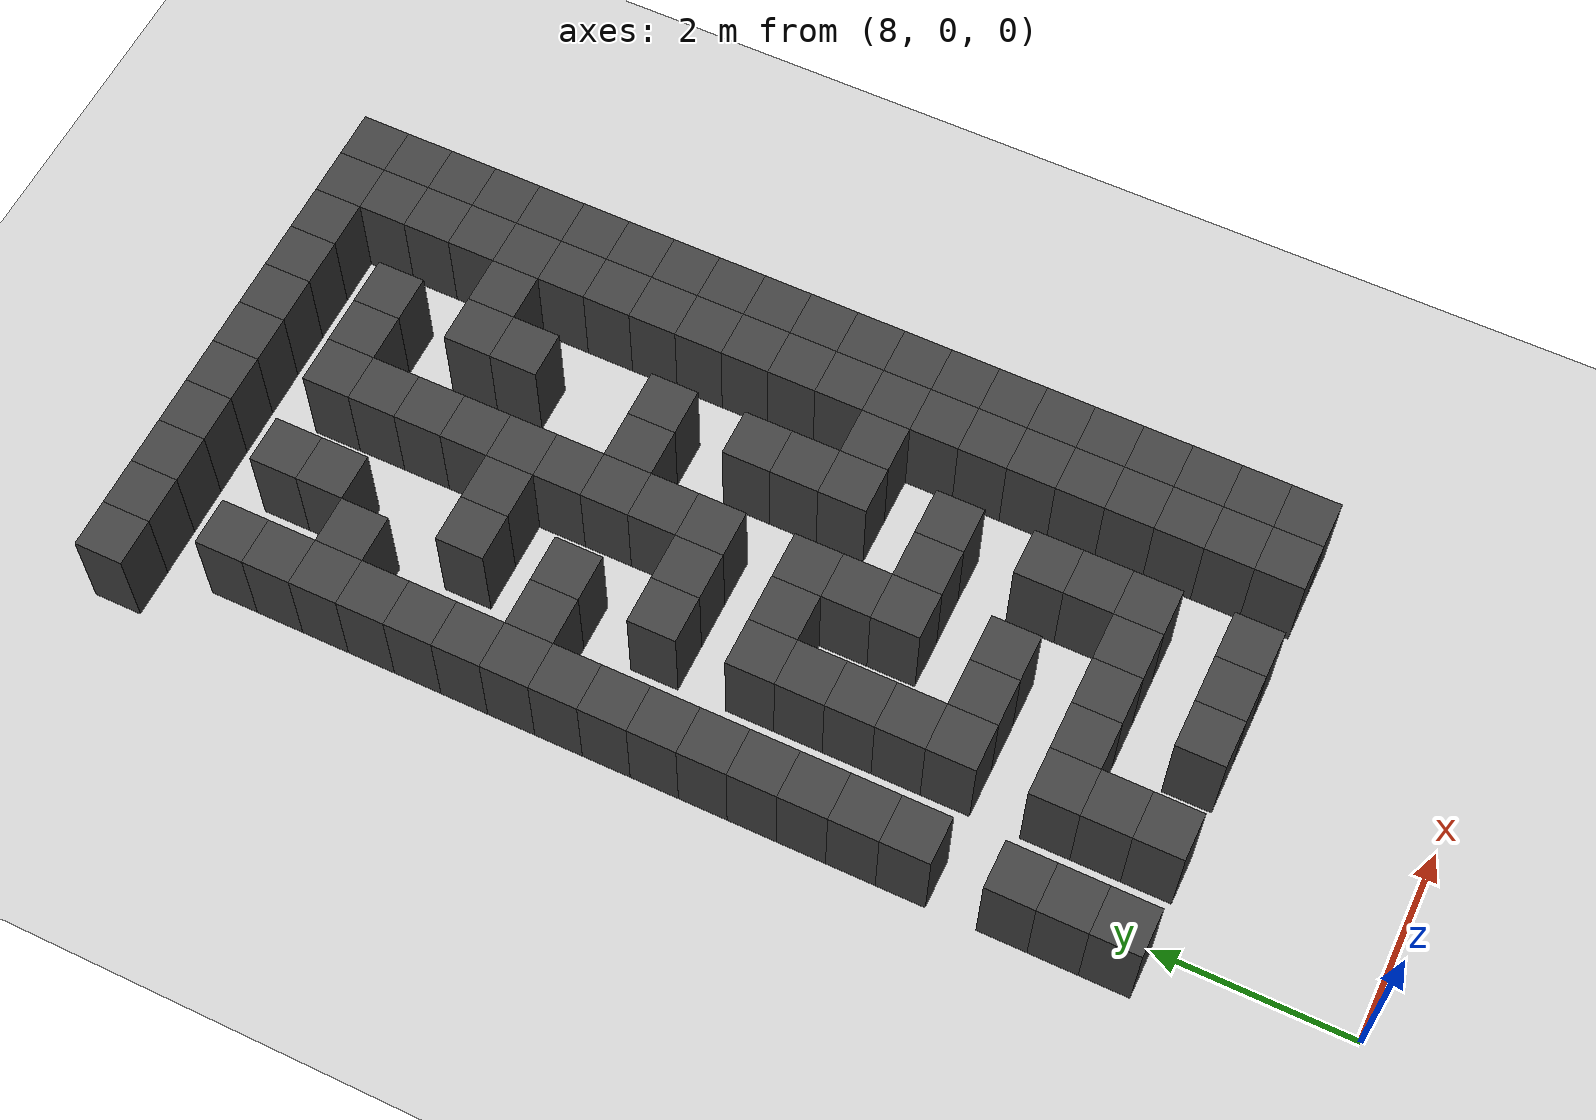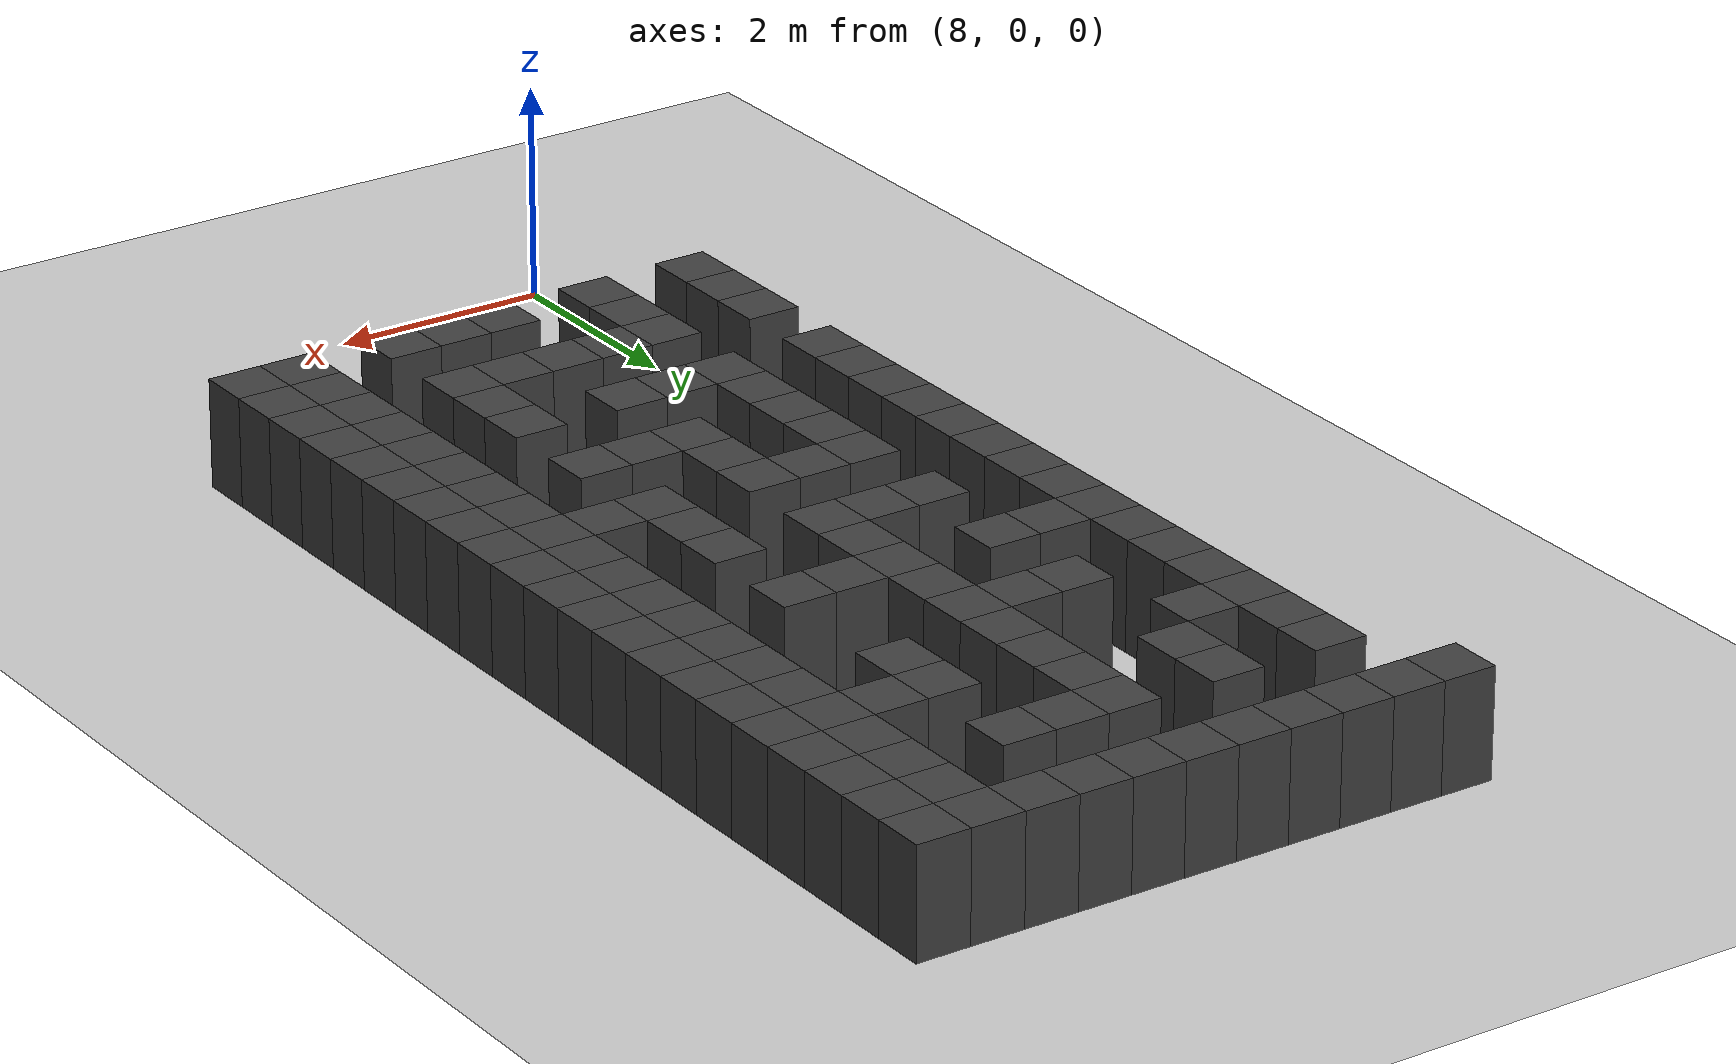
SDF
<sdf version="1.7">
 <world name="map_16048">
  <model name="ground_plane">
   <static>true</static>
   <link name="link">
    <collision name="collision">
     <geometry><plane><normal>0 0 1</normal><size>200 200</size></plane></geometry>
    </collision>
    <visual name="visual">
     <geometry><plane><normal>0 0 1</normal><size>200 200</size></plane></geometry>
     <material><ambient>0.8 0.8 0.8 1</ambient><diffuse>0.8 0.8 0.8 1</diffuse></material>
    </visual>
   </link>
  </model>
  <model name="maze_environment">
   <static>true</static>
   <link name="wall_39">
    <pose>7.250 12.250 0.500 0 0 0</pose>
    <collision name="col"><geometry><box><size>0.5 0.5 1.0</size></box></geometry></collision>
    <visual name="vis">
     <geometry><box><size>0.5 0.5 1.0</size></box></geometry>
     <material><ambient>0.15 0.15 0.15 1</ambient><diffuse>0.25 0.25 0.25 1</diffuse></material>
    </visual>
   </link>
   <link name="wall_40">
    <pose>7.750 12.250 0.500 0 0 0</pose>
    <collision name="col"><geometry><box><size>0.5 0.5 1.0</size></box></geometry></collision>
    <visual name="vis">
     <geometry><box><size>0.5 0.5 1.0</size></box></geometry>
     <material><ambient>0.15 0.15 0.15 1</ambient><diffuse>0.25 0.25 0.25 1</diffuse></material>
    </visual>
   </link>
   <link name="wall_41">
    <pose>8.250 12.250 0.500 0 0 0</pose>
    <collision name="col"><geometry><box><size>0.5 0.5 1.0</size></box></geometry></collision>
    <visual name="vis">
     <geometry><box><size>0.5 0.5 1.0</size></box></geometry>
     <material><ambient>0.15 0.15 0.15 1</ambient><diffuse>0.25 0.25 0.25 1</diffuse></material>
    </visual>
   </link>
   <link name="wall_42">
    <pose>8.750 12.250 0.500 0 0 0</pose>
    <collision name="col"><geometry><box><size>0.5 0.5 1.0</size></box></geometry></collision>
    <visual name="vis">
     <geometry><box><size>0.5 0.5 1.0</size></box></geometry>
     <material><ambient>0.15 0.15 0.15 1</ambient><diffuse>0.25 0.25 0.25 1</diffuse></material>
    </visual>
   </link>
   <link name="wall_43">
    <pose>9.250 12.250 0.500 0 0 0</pose>
    <collision name="col"><geometry><box><size>0.5 0.5 1.0</size></box></geometry></collision>
    <visual name="vis">
     <geometry><box><size>0.5 0.5 1.0</size></box></geometry>
     <material><ambient>0.15 0.15 0.15 1</ambient><diffuse>0.25 0.25 0.25 1</diffuse></material>
    </visual>
   </link>
   <link name="wall_44">
    <pose>9.750 12.250 0.500 0 0 0</pose>
    <collision name="col"><geometry><box><size>0.5 0.5 1.0</size></box></geometry></collision>
    <visual name="vis">
     <geometry><box><size>0.5 0.5 1.0</size></box></geometry>
     <material><ambient>0.15 0.15 0.15 1</ambient><diffuse>0.25 0.25 0.25 1</diffuse></material>
    </visual>
   </link>
   <link name="wall_45">
    <pose>10.250 12.250 0.500 0 0 0</pose>
    <collision name="col"><geometry><box><size>0.5 0.5 1.0</size></box></geometry></collision>
    <visual name="vis">
     <geometry><box><size>0.5 0.5 1.0</size></box></geometry>
     <material><ambient>0.15 0.15 0.15 1</ambient><diffuse>0.25 0.25 0.25 1</diffuse></material>
    </visual>
   </link>
   <link name="wall_46">
    <pose>10.750 12.250 0.500 0 0 0</pose>
    <collision name="col"><geometry><box><size>0.5 0.5 1.0</size></box></geometry></collision>
    <visual name="vis">
     <geometry><box><size>0.5 0.5 1.0</size></box></geometry>
     <material><ambient>0.15 0.15 0.15 1</ambient><diffuse>0.25 0.25 0.25 1</diffuse></material>
    </visual>
   </link>
   <link name="wall_47">
    <pose>11.250 12.250 0.500 0 0 0</pose>
    <collision name="col"><geometry><box><size>0.5 0.5 1.0</size></box></geometry></collision>
    <visual name="vis">
     <geometry><box><size>0.5 0.5 1.0</size></box></geometry>
     <material><ambient>0.15 0.15 0.15 1</ambient><diffuse>0.25 0.25 0.25 1</diffuse></material>
    </visual>
   </link>
   <link name="wall_48">
    <pose>11.750 12.250 0.500 0 0 0</pose>
    <collision name="col"><geometry><box><size>0.5 0.5 1.0</size></box></geometry></collision>
    <visual name="vis">
     <geometry><box><size>0.5 0.5 1.0</size></box></geometry>
     <material><ambient>0.15 0.15 0.15 1</ambient><diffuse>0.25 0.25 0.25 1</diffuse></material>
    </visual>
   </link>
   <link name="wall_49">
    <pose>12.250 12.250 0.500 0 0 0</pose>
    <collision name="col"><geometry><box><size>0.5 0.5 1.0</size></box></geometry></collision>
    <visual name="vis">
     <geometry><box><size>0.5 0.5 1.0</size></box></geometry>
     <material><ambient>0.15 0.15 0.15 1</ambient><diffuse>0.25 0.25 0.25 1</diffuse></material>
    </visual>
   </link>
   <link name="wall_55">
    <pose>11.750 11.750 0.500 0 0 0</pose>
    <collision name="col"><geometry><box><size>0.5 0.5 1.0</size></box></geometry></collision>
    <visual name="vis">
     <geometry><box><size>0.5 0.5 1.0</size></box></geometry>
     <material><ambient>0.15 0.15 0.15 1</ambient><diffuse>0.25 0.25 0.25 1</diffuse></material>
    </visual>
   </link>
   <link name="wall_56">
    <pose>12.250 11.750 0.500 0 0 0</pose>
    <collision name="col"><geometry><box><size>0.5 0.5 1.0</size></box></geometry></collision>
    <visual name="vis">
     <geometry><box><size>0.5 0.5 1.0</size></box></geometry>
     <material><ambient>0.15 0.15 0.15 1</ambient><diffuse>0.25 0.25 0.25 1</diffuse></material>
    </visual>
   </link>
   <link name="wall_86">
    <pose>7.750 11.250 0.500 0 0 0</pose>
    <collision name="col"><geometry><box><size>0.5 0.5 1.0</size></box></geometry></collision>
    <visual name="vis">
     <geometry><box><size>0.5 0.5 1.0</size></box></geometry>
     <material><ambient>0.15 0.15 0.15 1</ambient><diffuse>0.25 0.25 0.25 1</diffuse></material>
    </visual>
   </link>
   <link name="wall_87">
    <pose>8.750 11.250 0.500 0 0 0</pose>
    <collision name="col"><geometry><box><size>0.5 0.5 1.0</size></box></geometry></collision>
    <visual name="vis">
     <geometry><box><size>0.5 0.5 1.0</size></box></geometry>
     <material><ambient>0.15 0.15 0.15 1</ambient><diffuse>0.25 0.25 0.25 1</diffuse></material>
    </visual>
   </link>
   <link name="wall_88">
    <pose>9.750 11.250 0.500 0 0 0</pose>
    <collision name="col"><geometry><box><size>0.5 0.5 1.0</size></box></geometry></collision>
    <visual name="vis">
     <geometry><box><size>0.5 0.5 1.0</size></box></geometry>
     <material><ambient>0.15 0.15 0.15 1</ambient><diffuse>0.25 0.25 0.25 1</diffuse></material>
    </visual>
   </link>
   <link name="wall_89">
    <pose>10.250 11.250 0.500 0 0 0</pose>
    <collision name="col"><geometry><box><size>0.5 0.5 1.0</size></box></geometry></collision>
    <visual name="vis">
     <geometry><box><size>0.5 0.5 1.0</size></box></geometry>
     <material><ambient>0.15 0.15 0.15 1</ambient><diffuse>0.25 0.25 0.25 1</diffuse></material>
    </visual>
   </link>
   <link name="wall_90">
    <pose>10.750 11.250 0.500 0 0 0</pose>
    <collision name="col"><geometry><box><size>0.5 0.5 1.0</size></box></geometry></collision>
    <visual name="vis">
     <geometry><box><size>0.5 0.5 1.0</size></box></geometry>
     <material><ambient>0.15 0.15 0.15 1</ambient><diffuse>0.25 0.25 0.25 1</diffuse></material>
    </visual>
   </link>
   <link name="wall_91">
    <pose>11.750 11.250 0.500 0 0 0</pose>
    <collision name="col"><geometry><box><size>0.5 0.5 1.0</size></box></geometry></collision>
    <visual name="vis">
     <geometry><box><size>0.5 0.5 1.0</size></box></geometry>
     <material><ambient>0.15 0.15 0.15 1</ambient><diffuse>0.25 0.25 0.25 1</diffuse></material>
    </visual>
   </link>
   <link name="wall_92">
    <pose>12.250 11.250 0.500 0 0 0</pose>
    <collision name="col"><geometry><box><size>0.5 0.5 1.0</size></box></geometry></collision>
    <visual name="vis">
     <geometry><box><size>0.5 0.5 1.0</size></box></geometry>
     <material><ambient>0.15 0.15 0.15 1</ambient><diffuse>0.25 0.25 0.25 1</diffuse></material>
    </visual>
   </link>
   <link name="wall_100">
    <pose>7.750 10.750 0.500 0 0 0</pose>
    <collision name="col"><geometry><box><size>0.5 0.5 1.0</size></box></geometry></collision>
    <visual name="vis">
     <geometry><box><size>0.5 0.5 1.0</size></box></geometry>
     <material><ambient>0.15 0.15 0.15 1</ambient><diffuse>0.25 0.25 0.25 1</diffuse></material>
    </visual>
   </link>
   <link name="wall_101">
    <pose>8.750 10.750 0.500 0 0 0</pose>
    <collision name="col"><geometry><box><size>0.5 0.5 1.0</size></box></geometry></collision>
    <visual name="vis">
     <geometry><box><size>0.5 0.5 1.0</size></box></geometry>
     <material><ambient>0.15 0.15 0.15 1</ambient><diffuse>0.25 0.25 0.25 1</diffuse></material>
    </visual>
   </link>
   <link name="wall_102">
    <pose>9.750 10.750 0.500 0 0 0</pose>
    <collision name="col"><geometry><box><size>0.5 0.5 1.0</size></box></geometry></collision>
    <visual name="vis">
     <geometry><box><size>0.5 0.5 1.0</size></box></geometry>
     <material><ambient>0.15 0.15 0.15 1</ambient><diffuse>0.25 0.25 0.25 1</diffuse></material>
    </visual>
   </link>
   <link name="wall_103">
    <pose>11.750 10.750 0.500 0 0 0</pose>
    <collision name="col"><geometry><box><size>0.5 0.5 1.0</size></box></geometry></collision>
    <visual name="vis">
     <geometry><box><size>0.5 0.5 1.0</size></box></geometry>
     <material><ambient>0.15 0.15 0.15 1</ambient><diffuse>0.25 0.25 0.25 1</diffuse></material>
    </visual>
   </link>
   <link name="wall_104">
    <pose>12.250 10.750 0.500 0 0 0</pose>
    <collision name="col"><geometry><box><size>0.5 0.5 1.0</size></box></geometry></collision>
    <visual name="vis">
     <geometry><box><size>0.5 0.5 1.0</size></box></geometry>
     <material><ambient>0.15 0.15 0.15 1</ambient><diffuse>0.25 0.25 0.25 1</diffuse></material>
    </visual>
   </link>
   <link name="wall_130">
    <pose>7.750 10.250 0.500 0 0 0</pose>
    <collision name="col"><geometry><box><size>0.5 0.5 1.0</size></box></geometry></collision>
    <visual name="vis">
     <geometry><box><size>0.5 0.5 1.0</size></box></geometry>
     <material><ambient>0.15 0.15 0.15 1</ambient><diffuse>0.25 0.25 0.25 1</diffuse></material>
    </visual>
   </link>
   <link name="wall_131">
    <pose>8.250 10.250 0.500 0 0 0</pose>
    <collision name="col"><geometry><box><size>0.5 0.5 1.0</size></box></geometry></collision>
    <visual name="vis">
     <geometry><box><size>0.5 0.5 1.0</size></box></geometry>
     <material><ambient>0.15 0.15 0.15 1</ambient><diffuse>0.25 0.25 0.25 1</diffuse></material>
    </visual>
   </link>
   <link name="wall_132">
    <pose>9.750 10.250 0.500 0 0 0</pose>
    <collision name="col"><geometry><box><size>0.5 0.5 1.0</size></box></geometry></collision>
    <visual name="vis">
     <geometry><box><size>0.5 0.5 1.0</size></box></geometry>
     <material><ambient>0.15 0.15 0.15 1</ambient><diffuse>0.25 0.25 0.25 1</diffuse></material>
    </visual>
   </link>
   <link name="wall_133">
    <pose>10.750 10.250 0.500 0 0 0</pose>
    <collision name="col"><geometry><box><size>0.5 0.5 1.0</size></box></geometry></collision>
    <visual name="vis">
     <geometry><box><size>0.5 0.5 1.0</size></box></geometry>
     <material><ambient>0.15 0.15 0.15 1</ambient><diffuse>0.25 0.25 0.25 1</diffuse></material>
    </visual>
   </link>
   <link name="wall_134">
    <pose>11.250 10.250 0.500 0 0 0</pose>
    <collision name="col"><geometry><box><size>0.5 0.5 1.0</size></box></geometry></collision>
    <visual name="vis">
     <geometry><box><size>0.5 0.5 1.0</size></box></geometry>
     <material><ambient>0.15 0.15 0.15 1</ambient><diffuse>0.25 0.25 0.25 1</diffuse></material>
    </visual>
   </link>
   <link name="wall_135">
    <pose>11.750 10.250 0.500 0 0 0</pose>
    <collision name="col"><geometry><box><size>0.5 0.5 1.0</size></box></geometry></collision>
    <visual name="vis">
     <geometry><box><size>0.5 0.5 1.0</size></box></geometry>
     <material><ambient>0.15 0.15 0.15 1</ambient><diffuse>0.25 0.25 0.25 1</diffuse></material>
    </visual>
   </link>
   <link name="wall_136">
    <pose>12.250 10.250 0.500 0 0 0</pose>
    <collision name="col"><geometry><box><size>0.5 0.5 1.0</size></box></geometry></collision>
    <visual name="vis">
     <geometry><box><size>0.5 0.5 1.0</size></box></geometry>
     <material><ambient>0.15 0.15 0.15 1</ambient><diffuse>0.25 0.25 0.25 1</diffuse></material>
    </visual>
   </link>
   <link name="wall_145">
    <pose>7.750 9.750 0.500 0 0 0</pose>
    <collision name="col"><geometry><box><size>0.5 0.5 1.0</size></box></geometry></collision>
    <visual name="vis">
     <geometry><box><size>0.5 0.5 1.0</size></box></geometry>
     <material><ambient>0.15 0.15 0.15 1</ambient><diffuse>0.25 0.25 0.25 1</diffuse></material>
    </visual>
   </link>
   <link name="wall_146">
    <pose>9.750 9.750 0.500 0 0 0</pose>
    <collision name="col"><geometry><box><size>0.5 0.5 1.0</size></box></geometry></collision>
    <visual name="vis">
     <geometry><box><size>0.5 0.5 1.0</size></box></geometry>
     <material><ambient>0.15 0.15 0.15 1</ambient><diffuse>0.25 0.25 0.25 1</diffuse></material>
    </visual>
   </link>
   <link name="wall_147">
    <pose>10.750 9.750 0.500 0 0 0</pose>
    <collision name="col"><geometry><box><size>0.5 0.5 1.0</size></box></geometry></collision>
    <visual name="vis">
     <geometry><box><size>0.5 0.5 1.0</size></box></geometry>
     <material><ambient>0.15 0.15 0.15 1</ambient><diffuse>0.25 0.25 0.25 1</diffuse></material>
    </visual>
   </link>
   <link name="wall_148">
    <pose>11.750 9.750 0.500 0 0 0</pose>
    <collision name="col"><geometry><box><size>0.5 0.5 1.0</size></box></geometry></collision>
    <visual name="vis">
     <geometry><box><size>0.5 0.5 1.0</size></box></geometry>
     <material><ambient>0.15 0.15 0.15 1</ambient><diffuse>0.25 0.25 0.25 1</diffuse></material>
    </visual>
   </link>
   <link name="wall_149">
    <pose>12.250 9.750 0.500 0 0 0</pose>
    <collision name="col"><geometry><box><size>0.5 0.5 1.0</size></box></geometry></collision>
    <visual name="vis">
     <geometry><box><size>0.5 0.5 1.0</size></box></geometry>
     <material><ambient>0.15 0.15 0.15 1</ambient><diffuse>0.25 0.25 0.25 1</diffuse></material>
    </visual>
   </link>
   <link name="wall_183">
    <pose>7.750 9.250 0.500 0 0 0</pose>
    <collision name="col"><geometry><box><size>0.5 0.5 1.0</size></box></geometry></collision>
    <visual name="vis">
     <geometry><box><size>0.5 0.5 1.0</size></box></geometry>
     <material><ambient>0.15 0.15 0.15 1</ambient><diffuse>0.25 0.25 0.25 1</diffuse></material>
    </visual>
   </link>
   <link name="wall_184">
    <pose>8.750 9.250 0.500 0 0 0</pose>
    <collision name="col"><geometry><box><size>0.5 0.5 1.0</size></box></geometry></collision>
    <visual name="vis">
     <geometry><box><size>0.5 0.5 1.0</size></box></geometry>
     <material><ambient>0.15 0.15 0.15 1</ambient><diffuse>0.25 0.25 0.25 1</diffuse></material>
    </visual>
   </link>
   <link name="wall_185">
    <pose>9.250 9.250 0.500 0 0 0</pose>
    <collision name="col"><geometry><box><size>0.5 0.5 1.0</size></box></geometry></collision>
    <visual name="vis">
     <geometry><box><size>0.5 0.5 1.0</size></box></geometry>
     <material><ambient>0.15 0.15 0.15 1</ambient><diffuse>0.25 0.25 0.25 1</diffuse></material>
    </visual>
   </link>
   <link name="wall_186">
    <pose>9.750 9.250 0.500 0 0 0</pose>
    <collision name="col"><geometry><box><size>0.5 0.5 1.0</size></box></geometry></collision>
    <visual name="vis">
     <geometry><box><size>0.5 0.5 1.0</size></box></geometry>
     <material><ambient>0.15 0.15 0.15 1</ambient><diffuse>0.25 0.25 0.25 1</diffuse></material>
    </visual>
   </link>
   <link name="wall_187">
    <pose>11.750 9.250 0.500 0 0 0</pose>
    <collision name="col"><geometry><box><size>0.5 0.5 1.0</size></box></geometry></collision>
    <visual name="vis">
     <geometry><box><size>0.5 0.5 1.0</size></box></geometry>
     <material><ambient>0.15 0.15 0.15 1</ambient><diffuse>0.25 0.25 0.25 1</diffuse></material>
    </visual>
   </link>
   <link name="wall_188">
    <pose>12.250 9.250 0.500 0 0 0</pose>
    <collision name="col"><geometry><box><size>0.5 0.5 1.0</size></box></geometry></collision>
    <visual name="vis">
     <geometry><box><size>0.5 0.5 1.0</size></box></geometry>
     <material><ambient>0.15 0.15 0.15 1</ambient><diffuse>0.25 0.25 0.25 1</diffuse></material>
    </visual>
   </link>
   <link name="wall_196">
    <pose>7.750 8.750 0.500 0 0 0</pose>
    <collision name="col"><geometry><box><size>0.5 0.5 1.0</size></box></geometry></collision>
    <visual name="vis">
     <geometry><box><size>0.5 0.5 1.0</size></box></geometry>
     <material><ambient>0.15 0.15 0.15 1</ambient><diffuse>0.25 0.25 0.25 1</diffuse></material>
    </visual>
   </link>
   <link name="wall_197">
    <pose>9.750 8.750 0.500 0 0 0</pose>
    <collision name="col"><geometry><box><size>0.5 0.5 1.0</size></box></geometry></collision>
    <visual name="vis">
     <geometry><box><size>0.5 0.5 1.0</size></box></geometry>
     <material><ambient>0.15 0.15 0.15 1</ambient><diffuse>0.25 0.25 0.25 1</diffuse></material>
    </visual>
   </link>
   <link name="wall_198">
    <pose>11.750 8.750 0.500 0 0 0</pose>
    <collision name="col"><geometry><box><size>0.5 0.5 1.0</size></box></geometry></collision>
    <visual name="vis">
     <geometry><box><size>0.5 0.5 1.0</size></box></geometry>
     <material><ambient>0.15 0.15 0.15 1</ambient><diffuse>0.25 0.25 0.25 1</diffuse></material>
    </visual>
   </link>
   <link name="wall_199">
    <pose>12.250 8.750 0.500 0 0 0</pose>
    <collision name="col"><geometry><box><size>0.5 0.5 1.0</size></box></geometry></collision>
    <visual name="vis">
     <geometry><box><size>0.5 0.5 1.0</size></box></geometry>
     <material><ambient>0.15 0.15 0.15 1</ambient><diffuse>0.25 0.25 0.25 1</diffuse></material>
    </visual>
   </link>
   <link name="wall_224">
    <pose>7.750 8.250 0.500 0 0 0</pose>
    <collision name="col"><geometry><box><size>0.5 0.5 1.0</size></box></geometry></collision>
    <visual name="vis">
     <geometry><box><size>0.5 0.5 1.0</size></box></geometry>
     <material><ambient>0.15 0.15 0.15 1</ambient><diffuse>0.25 0.25 0.25 1</diffuse></material>
    </visual>
   </link>
   <link name="wall_225">
    <pose>8.250 8.250 0.500 0 0 0</pose>
    <collision name="col"><geometry><box><size>0.5 0.5 1.0</size></box></geometry></collision>
    <visual name="vis">
     <geometry><box><size>0.5 0.5 1.0</size></box></geometry>
     <material><ambient>0.15 0.15 0.15 1</ambient><diffuse>0.25 0.25 0.25 1</diffuse></material>
    </visual>
   </link>
   <link name="wall_226">
    <pose>8.750 8.250 0.500 0 0 0</pose>
    <collision name="col"><geometry><box><size>0.5 0.5 1.0</size></box></geometry></collision>
    <visual name="vis">
     <geometry><box><size>0.5 0.5 1.0</size></box></geometry>
     <material><ambient>0.15 0.15 0.15 1</ambient><diffuse>0.25 0.25 0.25 1</diffuse></material>
    </visual>
   </link>
   <link name="wall_227">
    <pose>9.750 8.250 0.500 0 0 0</pose>
    <collision name="col"><geometry><box><size>0.5 0.5 1.0</size></box></geometry></collision>
    <visual name="vis">
     <geometry><box><size>0.5 0.5 1.0</size></box></geometry>
     <material><ambient>0.15 0.15 0.15 1</ambient><diffuse>0.25 0.25 0.25 1</diffuse></material>
    </visual>
   </link>
   <link name="wall_228">
    <pose>10.250 8.250 0.500 0 0 0</pose>
    <collision name="col"><geometry><box><size>0.5 0.5 1.0</size></box></geometry></collision>
    <visual name="vis">
     <geometry><box><size>0.5 0.5 1.0</size></box></geometry>
     <material><ambient>0.15 0.15 0.15 1</ambient><diffuse>0.25 0.25 0.25 1</diffuse></material>
    </visual>
   </link>
   <link name="wall_229">
    <pose>10.750 8.250 0.500 0 0 0</pose>
    <collision name="col"><geometry><box><size>0.5 0.5 1.0</size></box></geometry></collision>
    <visual name="vis">
     <geometry><box><size>0.5 0.5 1.0</size></box></geometry>
     <material><ambient>0.15 0.15 0.15 1</ambient><diffuse>0.25 0.25 0.25 1</diffuse></material>
    </visual>
   </link>
   <link name="wall_230">
    <pose>11.750 8.250 0.500 0 0 0</pose>
    <collision name="col"><geometry><box><size>0.5 0.5 1.0</size></box></geometry></collision>
    <visual name="vis">
     <geometry><box><size>0.5 0.5 1.0</size></box></geometry>
     <material><ambient>0.15 0.15 0.15 1</ambient><diffuse>0.25 0.25 0.25 1</diffuse></material>
    </visual>
   </link>
   <link name="wall_231">
    <pose>12.250 8.250 0.500 0 0 0</pose>
    <collision name="col"><geometry><box><size>0.5 0.5 1.0</size></box></geometry></collision>
    <visual name="vis">
     <geometry><box><size>0.5 0.5 1.0</size></box></geometry>
     <material><ambient>0.15 0.15 0.15 1</ambient><diffuse>0.25 0.25 0.25 1</diffuse></material>
    </visual>
   </link>
   <link name="wall_244">
    <pose>7.750 7.750 0.500 0 0 0</pose>
    <collision name="col"><geometry><box><size>0.5 0.5 1.0</size></box></geometry></collision>
    <visual name="vis">
     <geometry><box><size>0.5 0.5 1.0</size></box></geometry>
     <material><ambient>0.15 0.15 0.15 1</ambient><diffuse>0.25 0.25 0.25 1</diffuse></material>
    </visual>
   </link>
   <link name="wall_245">
    <pose>9.750 7.750 0.500 0 0 0</pose>
    <collision name="col"><geometry><box><size>0.5 0.5 1.0</size></box></geometry></collision>
    <visual name="vis">
     <geometry><box><size>0.5 0.5 1.0</size></box></geometry>
     <material><ambient>0.15 0.15 0.15 1</ambient><diffuse>0.25 0.25 0.25 1</diffuse></material>
    </visual>
   </link>
   <link name="wall_246">
    <pose>11.750 7.750 0.500 0 0 0</pose>
    <collision name="col"><geometry><box><size>0.5 0.5 1.0</size></box></geometry></collision>
    <visual name="vis">
     <geometry><box><size>0.5 0.5 1.0</size></box></geometry>
     <material><ambient>0.15 0.15 0.15 1</ambient><diffuse>0.25 0.25 0.25 1</diffuse></material>
    </visual>
   </link>
   <link name="wall_247">
    <pose>12.250 7.750 0.500 0 0 0</pose>
    <collision name="col"><geometry><box><size>0.5 0.5 1.0</size></box></geometry></collision>
    <visual name="vis">
     <geometry><box><size>0.5 0.5 1.0</size></box></geometry>
     <material><ambient>0.15 0.15 0.15 1</ambient><diffuse>0.25 0.25 0.25 1</diffuse></material>
    </visual>
   </link>
   <link name="wall_275">
    <pose>7.750 7.250 0.500 0 0 0</pose>
    <collision name="col"><geometry><box><size>0.5 0.5 1.0</size></box></geometry></collision>
    <visual name="vis">
     <geometry><box><size>0.5 0.5 1.0</size></box></geometry>
     <material><ambient>0.15 0.15 0.15 1</ambient><diffuse>0.25 0.25 0.25 1</diffuse></material>
    </visual>
   </link>
   <link name="wall_276">
    <pose>8.750 7.250 0.500 0 0 0</pose>
    <collision name="col"><geometry><box><size>0.5 0.5 1.0</size></box></geometry></collision>
    <visual name="vis">
     <geometry><box><size>0.5 0.5 1.0</size></box></geometry>
     <material><ambient>0.15 0.15 0.15 1</ambient><diffuse>0.25 0.25 0.25 1</diffuse></material>
    </visual>
   </link>
   <link name="wall_277">
    <pose>9.250 7.250 0.500 0 0 0</pose>
    <collision name="col"><geometry><box><size>0.5 0.5 1.0</size></box></geometry></collision>
    <visual name="vis">
     <geometry><box><size>0.5 0.5 1.0</size></box></geometry>
     <material><ambient>0.15 0.15 0.15 1</ambient><diffuse>0.25 0.25 0.25 1</diffuse></material>
    </visual>
   </link>
   <link name="wall_278">
    <pose>9.750 7.250 0.500 0 0 0</pose>
    <collision name="col"><geometry><box><size>0.5 0.5 1.0</size></box></geometry></collision>
    <visual name="vis">
     <geometry><box><size>0.5 0.5 1.0</size></box></geometry>
     <material><ambient>0.15 0.15 0.15 1</ambient><diffuse>0.25 0.25 0.25 1</diffuse></material>
    </visual>
   </link>
   <link name="wall_279">
    <pose>10.750 7.250 0.500 0 0 0</pose>
    <collision name="col"><geometry><box><size>0.5 0.5 1.0</size></box></geometry></collision>
    <visual name="vis">
     <geometry><box><size>0.5 0.5 1.0</size></box></geometry>
     <material><ambient>0.15 0.15 0.15 1</ambient><diffuse>0.25 0.25 0.25 1</diffuse></material>
    </visual>
   </link>
   <link name="wall_280">
    <pose>11.750 7.250 0.500 0 0 0</pose>
    <collision name="col"><geometry><box><size>0.5 0.5 1.0</size></box></geometry></collision>
    <visual name="vis">
     <geometry><box><size>0.5 0.5 1.0</size></box></geometry>
     <material><ambient>0.15 0.15 0.15 1</ambient><diffuse>0.25 0.25 0.25 1</diffuse></material>
    </visual>
   </link>
   <link name="wall_281">
    <pose>12.250 7.250 0.500 0 0 0</pose>
    <collision name="col"><geometry><box><size>0.5 0.5 1.0</size></box></geometry></collision>
    <visual name="vis">
     <geometry><box><size>0.5 0.5 1.0</size></box></geometry>
     <material><ambient>0.15 0.15 0.15 1</ambient><diffuse>0.25 0.25 0.25 1</diffuse></material>
    </visual>
   </link>
   <link name="wall_293">
    <pose>7.750 6.750 0.500 0 0 0</pose>
    <collision name="col"><geometry><box><size>0.5 0.5 1.0</size></box></geometry></collision>
    <visual name="vis">
     <geometry><box><size>0.5 0.5 1.0</size></box></geometry>
     <material><ambient>0.15 0.15 0.15 1</ambient><diffuse>0.25 0.25 0.25 1</diffuse></material>
    </visual>
   </link>
   <link name="wall_294">
    <pose>10.750 6.750 0.500 0 0 0</pose>
    <collision name="col"><geometry><box><size>0.5 0.5 1.0</size></box></geometry></collision>
    <visual name="vis">
     <geometry><box><size>0.5 0.5 1.0</size></box></geometry>
     <material><ambient>0.15 0.15 0.15 1</ambient><diffuse>0.25 0.25 0.25 1</diffuse></material>
    </visual>
   </link>
   <link name="wall_295">
    <pose>11.750 6.750 0.500 0 0 0</pose>
    <collision name="col"><geometry><box><size>0.5 0.5 1.0</size></box></geometry></collision>
    <visual name="vis">
     <geometry><box><size>0.5 0.5 1.0</size></box></geometry>
     <material><ambient>0.15 0.15 0.15 1</ambient><diffuse>0.25 0.25 0.25 1</diffuse></material>
    </visual>
   </link>
   <link name="wall_296">
    <pose>12.250 6.750 0.500 0 0 0</pose>
    <collision name="col"><geometry><box><size>0.5 0.5 1.0</size></box></geometry></collision>
    <visual name="vis">
     <geometry><box><size>0.5 0.5 1.0</size></box></geometry>
     <material><ambient>0.15 0.15 0.15 1</ambient><diffuse>0.25 0.25 0.25 1</diffuse></material>
    </visual>
   </link>
   <link name="wall_322">
    <pose>7.750 6.250 0.500 0 0 0</pose>
    <collision name="col"><geometry><box><size>0.5 0.5 1.0</size></box></geometry></collision>
    <visual name="vis">
     <geometry><box><size>0.5 0.5 1.0</size></box></geometry>
     <material><ambient>0.15 0.15 0.15 1</ambient><diffuse>0.25 0.25 0.25 1</diffuse></material>
    </visual>
   </link>
   <link name="wall_323">
    <pose>8.750 6.250 0.500 0 0 0</pose>
    <collision name="col"><geometry><box><size>0.5 0.5 1.0</size></box></geometry></collision>
    <visual name="vis">
     <geometry><box><size>0.5 0.5 1.0</size></box></geometry>
     <material><ambient>0.15 0.15 0.15 1</ambient><diffuse>0.25 0.25 0.25 1</diffuse></material>
    </visual>
   </link>
   <link name="wall_324">
    <pose>9.250 6.250 0.500 0 0 0</pose>
    <collision name="col"><geometry><box><size>0.5 0.5 1.0</size></box></geometry></collision>
    <visual name="vis">
     <geometry><box><size>0.5 0.5 1.0</size></box></geometry>
     <material><ambient>0.15 0.15 0.15 1</ambient><diffuse>0.25 0.25 0.25 1</diffuse></material>
    </visual>
   </link>
   <link name="wall_325">
    <pose>9.750 6.250 0.500 0 0 0</pose>
    <collision name="col"><geometry><box><size>0.5 0.5 1.0</size></box></geometry></collision>
    <visual name="vis">
     <geometry><box><size>0.5 0.5 1.0</size></box></geometry>
     <material><ambient>0.15 0.15 0.15 1</ambient><diffuse>0.25 0.25 0.25 1</diffuse></material>
    </visual>
   </link>
   <link name="wall_326">
    <pose>10.750 6.250 0.500 0 0 0</pose>
    <collision name="col"><geometry><box><size>0.5 0.5 1.0</size></box></geometry></collision>
    <visual name="vis">
     <geometry><box><size>0.5 0.5 1.0</size></box></geometry>
     <material><ambient>0.15 0.15 0.15 1</ambient><diffuse>0.25 0.25 0.25 1</diffuse></material>
    </visual>
   </link>
   <link name="wall_327">
    <pose>11.250 6.250 0.500 0 0 0</pose>
    <collision name="col"><geometry><box><size>0.5 0.5 1.0</size></box></geometry></collision>
    <visual name="vis">
     <geometry><box><size>0.5 0.5 1.0</size></box></geometry>
     <material><ambient>0.15 0.15 0.15 1</ambient><diffuse>0.25 0.25 0.25 1</diffuse></material>
    </visual>
   </link>
   <link name="wall_328">
    <pose>11.750 6.250 0.500 0 0 0</pose>
    <collision name="col"><geometry><box><size>0.5 0.5 1.0</size></box></geometry></collision>
    <visual name="vis">
     <geometry><box><size>0.5 0.5 1.0</size></box></geometry>
     <material><ambient>0.15 0.15 0.15 1</ambient><diffuse>0.25 0.25 0.25 1</diffuse></material>
    </visual>
   </link>
   <link name="wall_329">
    <pose>12.250 6.250 0.500 0 0 0</pose>
    <collision name="col"><geometry><box><size>0.5 0.5 1.0</size></box></geometry></collision>
    <visual name="vis">
     <geometry><box><size>0.5 0.5 1.0</size></box></geometry>
     <material><ambient>0.15 0.15 0.15 1</ambient><diffuse>0.25 0.25 0.25 1</diffuse></material>
    </visual>
   </link>
   <link name="wall_340">
    <pose>7.750 5.750 0.500 0 0 0</pose>
    <collision name="col"><geometry><box><size>0.5 0.5 1.0</size></box></geometry></collision>
    <visual name="vis">
     <geometry><box><size>0.5 0.5 1.0</size></box></geometry>
     <material><ambient>0.15 0.15 0.15 1</ambient><diffuse>0.25 0.25 0.25 1</diffuse></material>
    </visual>
   </link>
   <link name="wall_341">
    <pose>8.750 5.750 0.500 0 0 0</pose>
    <collision name="col"><geometry><box><size>0.5 0.5 1.0</size></box></geometry></collision>
    <visual name="vis">
     <geometry><box><size>0.5 0.5 1.0</size></box></geometry>
     <material><ambient>0.15 0.15 0.15 1</ambient><diffuse>0.25 0.25 0.25 1</diffuse></material>
    </visual>
   </link>
   <link name="wall_342">
    <pose>9.750 5.750 0.500 0 0 0</pose>
    <collision name="col"><geometry><box><size>0.5 0.5 1.0</size></box></geometry></collision>
    <visual name="vis">
     <geometry><box><size>0.5 0.5 1.0</size></box></geometry>
     <material><ambient>0.15 0.15 0.15 1</ambient><diffuse>0.25 0.25 0.25 1</diffuse></material>
    </visual>
   </link>
   <link name="wall_343">
    <pose>11.750 5.750 0.500 0 0 0</pose>
    <collision name="col"><geometry><box><size>0.5 0.5 1.0</size></box></geometry></collision>
    <visual name="vis">
     <geometry><box><size>0.5 0.5 1.0</size></box></geometry>
     <material><ambient>0.15 0.15 0.15 1</ambient><diffuse>0.25 0.25 0.25 1</diffuse></material>
    </visual>
   </link>
   <link name="wall_344">
    <pose>12.250 5.750 0.500 0 0 0</pose>
    <collision name="col"><geometry><box><size>0.5 0.5 1.0</size></box></geometry></collision>
    <visual name="vis">
     <geometry><box><size>0.5 0.5 1.0</size></box></geometry>
     <material><ambient>0.15 0.15 0.15 1</ambient><diffuse>0.25 0.25 0.25 1</diffuse></material>
    </visual>
   </link>
   <link name="wall_368">
    <pose>7.750 5.250 0.500 0 0 0</pose>
    <collision name="col"><geometry><box><size>0.5 0.5 1.0</size></box></geometry></collision>
    <visual name="vis">
     <geometry><box><size>0.5 0.5 1.0</size></box></geometry>
     <material><ambient>0.15 0.15 0.15 1</ambient><diffuse>0.25 0.25 0.25 1</diffuse></material>
    </visual>
   </link>
   <link name="wall_369">
    <pose>8.750 5.250 0.500 0 0 0</pose>
    <collision name="col"><geometry><box><size>0.5 0.5 1.0</size></box></geometry></collision>
    <visual name="vis">
     <geometry><box><size>0.5 0.5 1.0</size></box></geometry>
     <material><ambient>0.15 0.15 0.15 1</ambient><diffuse>0.25 0.25 0.25 1</diffuse></material>
    </visual>
   </link>
   <link name="wall_370">
    <pose>9.750 5.250 0.500 0 0 0</pose>
    <collision name="col"><geometry><box><size>0.5 0.5 1.0</size></box></geometry></collision>
    <visual name="vis">
     <geometry><box><size>0.5 0.5 1.0</size></box></geometry>
     <material><ambient>0.15 0.15 0.15 1</ambient><diffuse>0.25 0.25 0.25 1</diffuse></material>
    </visual>
   </link>
   <link name="wall_371">
    <pose>10.250 5.250 0.500 0 0 0</pose>
    <collision name="col"><geometry><box><size>0.5 0.5 1.0</size></box></geometry></collision>
    <visual name="vis">
     <geometry><box><size>0.5 0.5 1.0</size></box></geometry>
     <material><ambient>0.15 0.15 0.15 1</ambient><diffuse>0.25 0.25 0.25 1</diffuse></material>
    </visual>
   </link>
   <link name="wall_372">
    <pose>10.750 5.250 0.500 0 0 0</pose>
    <collision name="col"><geometry><box><size>0.5 0.5 1.0</size></box></geometry></collision>
    <visual name="vis">
     <geometry><box><size>0.5 0.5 1.0</size></box></geometry>
     <material><ambient>0.15 0.15 0.15 1</ambient><diffuse>0.25 0.25 0.25 1</diffuse></material>
    </visual>
   </link>
   <link name="wall_373">
    <pose>11.750 5.250 0.500 0 0 0</pose>
    <collision name="col"><geometry><box><size>0.5 0.5 1.0</size></box></geometry></collision>
    <visual name="vis">
     <geometry><box><size>0.5 0.5 1.0</size></box></geometry>
     <material><ambient>0.15 0.15 0.15 1</ambient><diffuse>0.25 0.25 0.25 1</diffuse></material>
    </visual>
   </link>
   <link name="wall_374">
    <pose>12.250 5.250 0.500 0 0 0</pose>
    <collision name="col"><geometry><box><size>0.5 0.5 1.0</size></box></geometry></collision>
    <visual name="vis">
     <geometry><box><size>0.5 0.5 1.0</size></box></geometry>
     <material><ambient>0.15 0.15 0.15 1</ambient><diffuse>0.25 0.25 0.25 1</diffuse></material>
    </visual>
   </link>
   <link name="wall_383">
    <pose>7.750 4.750 0.500 0 0 0</pose>
    <collision name="col"><geometry><box><size>0.5 0.5 1.0</size></box></geometry></collision>
    <visual name="vis">
     <geometry><box><size>0.5 0.5 1.0</size></box></geometry>
     <material><ambient>0.15 0.15 0.15 1</ambient><diffuse>0.25 0.25 0.25 1</diffuse></material>
    </visual>
   </link>
   <link name="wall_384">
    <pose>8.750 4.750 0.500 0 0 0</pose>
    <collision name="col"><geometry><box><size>0.5 0.5 1.0</size></box></geometry></collision>
    <visual name="vis">
     <geometry><box><size>0.5 0.5 1.0</size></box></geometry>
     <material><ambient>0.15 0.15 0.15 1</ambient><diffuse>0.25 0.25 0.25 1</diffuse></material>
    </visual>
   </link>
   <link name="wall_385">
    <pose>11.750 4.750 0.500 0 0 0</pose>
    <collision name="col"><geometry><box><size>0.5 0.5 1.0</size></box></geometry></collision>
    <visual name="vis">
     <geometry><box><size>0.5 0.5 1.0</size></box></geometry>
     <material><ambient>0.15 0.15 0.15 1</ambient><diffuse>0.25 0.25 0.25 1</diffuse></material>
    </visual>
   </link>
   <link name="wall_386">
    <pose>12.250 4.750 0.500 0 0 0</pose>
    <collision name="col"><geometry><box><size>0.5 0.5 1.0</size></box></geometry></collision>
    <visual name="vis">
     <geometry><box><size>0.5 0.5 1.0</size></box></geometry>
     <material><ambient>0.15 0.15 0.15 1</ambient><diffuse>0.25 0.25 0.25 1</diffuse></material>
    </visual>
   </link>
   <link name="wall_409">
    <pose>7.750 4.250 0.500 0 0 0</pose>
    <collision name="col"><geometry><box><size>0.5 0.5 1.0</size></box></geometry></collision>
    <visual name="vis">
     <geometry><box><size>0.5 0.5 1.0</size></box></geometry>
     <material><ambient>0.15 0.15 0.15 1</ambient><diffuse>0.25 0.25 0.25 1</diffuse></material>
    </visual>
   </link>
   <link name="wall_410">
    <pose>8.750 4.250 0.500 0 0 0</pose>
    <collision name="col"><geometry><box><size>0.5 0.5 1.0</size></box></geometry></collision>
    <visual name="vis">
     <geometry><box><size>0.5 0.5 1.0</size></box></geometry>
     <material><ambient>0.15 0.15 0.15 1</ambient><diffuse>0.25 0.25 0.25 1</diffuse></material>
    </visual>
   </link>
   <link name="wall_411">
    <pose>9.250 4.250 0.500 0 0 0</pose>
    <collision name="col"><geometry><box><size>0.5 0.5 1.0</size></box></geometry></collision>
    <visual name="vis">
     <geometry><box><size>0.5 0.5 1.0</size></box></geometry>
     <material><ambient>0.15 0.15 0.15 1</ambient><diffuse>0.25 0.25 0.25 1</diffuse></material>
    </visual>
   </link>
   <link name="wall_412">
    <pose>9.750 4.250 0.500 0 0 0</pose>
    <collision name="col"><geometry><box><size>0.5 0.5 1.0</size></box></geometry></collision>
    <visual name="vis">
     <geometry><box><size>0.5 0.5 1.0</size></box></geometry>
     <material><ambient>0.15 0.15 0.15 1</ambient><diffuse>0.25 0.25 0.25 1</diffuse></material>
    </visual>
   </link>
   <link name="wall_413">
    <pose>10.750 4.250 0.500 0 0 0</pose>
    <collision name="col"><geometry><box><size>0.5 0.5 1.0</size></box></geometry></collision>
    <visual name="vis">
     <geometry><box><size>0.5 0.5 1.0</size></box></geometry>
     <material><ambient>0.15 0.15 0.15 1</ambient><diffuse>0.25 0.25 0.25 1</diffuse></material>
    </visual>
   </link>
   <link name="wall_414">
    <pose>11.750 4.250 0.500 0 0 0</pose>
    <collision name="col"><geometry><box><size>0.5 0.5 1.0</size></box></geometry></collision>
    <visual name="vis">
     <geometry><box><size>0.5 0.5 1.0</size></box></geometry>
     <material><ambient>0.15 0.15 0.15 1</ambient><diffuse>0.25 0.25 0.25 1</diffuse></material>
    </visual>
   </link>
   <link name="wall_415">
    <pose>12.250 4.250 0.500 0 0 0</pose>
    <collision name="col"><geometry><box><size>0.5 0.5 1.0</size></box></geometry></collision>
    <visual name="vis">
     <geometry><box><size>0.5 0.5 1.0</size></box></geometry>
     <material><ambient>0.15 0.15 0.15 1</ambient><diffuse>0.25 0.25 0.25 1</diffuse></material>
    </visual>
   </link>
   <link name="wall_425">
    <pose>10.750 3.750 0.500 0 0 0</pose>
    <collision name="col"><geometry><box><size>0.5 0.5 1.0</size></box></geometry></collision>
    <visual name="vis">
     <geometry><box><size>0.5 0.5 1.0</size></box></geometry>
     <material><ambient>0.15 0.15 0.15 1</ambient><diffuse>0.25 0.25 0.25 1</diffuse></material>
    </visual>
   </link>
   <link name="wall_426">
    <pose>11.750 3.750 0.500 0 0 0</pose>
    <collision name="col"><geometry><box><size>0.5 0.5 1.0</size></box></geometry></collision>
    <visual name="vis">
     <geometry><box><size>0.5 0.5 1.0</size></box></geometry>
     <material><ambient>0.15 0.15 0.15 1</ambient><diffuse>0.25 0.25 0.25 1</diffuse></material>
    </visual>
   </link>
   <link name="wall_427">
    <pose>12.250 3.750 0.500 0 0 0</pose>
    <collision name="col"><geometry><box><size>0.5 0.5 1.0</size></box></geometry></collision>
    <visual name="vis">
     <geometry><box><size>0.5 0.5 1.0</size></box></geometry>
     <material><ambient>0.15 0.15 0.15 1</ambient><diffuse>0.25 0.25 0.25 1</diffuse></material>
    </visual>
   </link>
   <link name="wall_459">
    <pose>7.750 3.250 0.500 0 0 0</pose>
    <collision name="col"><geometry><box><size>0.5 0.5 1.0</size></box></geometry></collision>
    <visual name="vis">
     <geometry><box><size>0.5 0.5 1.0</size></box></geometry>
     <material><ambient>0.15 0.15 0.15 1</ambient><diffuse>0.25 0.25 0.25 1</diffuse></material>
    </visual>
   </link>
   <link name="wall_460">
    <pose>8.750 3.250 0.500 0 0 0</pose>
    <collision name="col"><geometry><box><size>0.5 0.5 1.0</size></box></geometry></collision>
    <visual name="vis">
     <geometry><box><size>0.5 0.5 1.0</size></box></geometry>
     <material><ambient>0.15 0.15 0.15 1</ambient><diffuse>0.25 0.25 0.25 1</diffuse></material>
    </visual>
   </link>
   <link name="wall_461">
    <pose>9.250 3.250 0.500 0 0 0</pose>
    <collision name="col"><geometry><box><size>0.5 0.5 1.0</size></box></geometry></collision>
    <visual name="vis">
     <geometry><box><size>0.5 0.5 1.0</size></box></geometry>
     <material><ambient>0.15 0.15 0.15 1</ambient><diffuse>0.25 0.25 0.25 1</diffuse></material>
    </visual>
   </link>
   <link name="wall_462">
    <pose>9.750 3.250 0.500 0 0 0</pose>
    <collision name="col"><geometry><box><size>0.5 0.5 1.0</size></box></geometry></collision>
    <visual name="vis">
     <geometry><box><size>0.5 0.5 1.0</size></box></geometry>
     <material><ambient>0.15 0.15 0.15 1</ambient><diffuse>0.25 0.25 0.25 1</diffuse></material>
    </visual>
   </link>
   <link name="wall_463">
    <pose>10.250 3.250 0.500 0 0 0</pose>
    <collision name="col"><geometry><box><size>0.5 0.5 1.0</size></box></geometry></collision>
    <visual name="vis">
     <geometry><box><size>0.5 0.5 1.0</size></box></geometry>
     <material><ambient>0.15 0.15 0.15 1</ambient><diffuse>0.25 0.25 0.25 1</diffuse></material>
    </visual>
   </link>
   <link name="wall_464">
    <pose>10.750 3.250 0.500 0 0 0</pose>
    <collision name="col"><geometry><box><size>0.5 0.5 1.0</size></box></geometry></collision>
    <visual name="vis">
     <geometry><box><size>0.5 0.5 1.0</size></box></geometry>
     <material><ambient>0.15 0.15 0.15 1</ambient><diffuse>0.25 0.25 0.25 1</diffuse></material>
    </visual>
   </link>
   <link name="wall_465">
    <pose>11.750 3.250 0.500 0 0 0</pose>
    <collision name="col"><geometry><box><size>0.5 0.5 1.0</size></box></geometry></collision>
    <visual name="vis">
     <geometry><box><size>0.5 0.5 1.0</size></box></geometry>
     <material><ambient>0.15 0.15 0.15 1</ambient><diffuse>0.25 0.25 0.25 1</diffuse></material>
    </visual>
   </link>
   <link name="wall_466">
    <pose>12.250 3.250 0.500 0 0 0</pose>
    <collision name="col"><geometry><box><size>0.5 0.5 1.0</size></box></geometry></collision>
    <visual name="vis">
     <geometry><box><size>0.5 0.5 1.0</size></box></geometry>
     <material><ambient>0.15 0.15 0.15 1</ambient><diffuse>0.25 0.25 0.25 1</diffuse></material>
    </visual>
   </link>
   <link name="wall_475">
    <pose>7.750 2.750 0.500 0 0 0</pose>
    <collision name="col"><geometry><box><size>0.5 0.5 1.0</size></box></geometry></collision>
    <visual name="vis">
     <geometry><box><size>0.5 0.5 1.0</size></box></geometry>
     <material><ambient>0.15 0.15 0.15 1</ambient><diffuse>0.25 0.25 0.25 1</diffuse></material>
    </visual>
   </link>
   <link name="wall_476">
    <pose>8.750 2.750 0.500 0 0 0</pose>
    <collision name="col"><geometry><box><size>0.5 0.5 1.0</size></box></geometry></collision>
    <visual name="vis">
     <geometry><box><size>0.5 0.5 1.0</size></box></geometry>
     <material><ambient>0.15 0.15 0.15 1</ambient><diffuse>0.25 0.25 0.25 1</diffuse></material>
    </visual>
   </link>
   <link name="wall_477">
    <pose>11.750 2.750 0.500 0 0 0</pose>
    <collision name="col"><geometry><box><size>0.5 0.5 1.0</size></box></geometry></collision>
    <visual name="vis">
     <geometry><box><size>0.5 0.5 1.0</size></box></geometry>
     <material><ambient>0.15 0.15 0.15 1</ambient><diffuse>0.25 0.25 0.25 1</diffuse></material>
    </visual>
   </link>
   <link name="wall_478">
    <pose>12.250 2.750 0.500 0 0 0</pose>
    <collision name="col"><geometry><box><size>0.5 0.5 1.0</size></box></geometry></collision>
    <visual name="vis">
     <geometry><box><size>0.5 0.5 1.0</size></box></geometry>
     <material><ambient>0.15 0.15 0.15 1</ambient><diffuse>0.25 0.25 0.25 1</diffuse></material>
    </visual>
   </link>
   <link name="wall_506">
    <pose>7.750 2.250 0.500 0 0 0</pose>
    <collision name="col"><geometry><box><size>0.5 0.5 1.0</size></box></geometry></collision>
    <visual name="vis">
     <geometry><box><size>0.5 0.5 1.0</size></box></geometry>
     <material><ambient>0.15 0.15 0.15 1</ambient><diffuse>0.25 0.25 0.25 1</diffuse></material>
    </visual>
   </link>
   <link name="wall_507">
    <pose>8.750 2.250 0.500 0 0 0</pose>
    <collision name="col"><geometry><box><size>0.5 0.5 1.0</size></box></geometry></collision>
    <visual name="vis">
     <geometry><box><size>0.5 0.5 1.0</size></box></geometry>
     <material><ambient>0.15 0.15 0.15 1</ambient><diffuse>0.25 0.25 0.25 1</diffuse></material>
    </visual>
   </link>
   <link name="wall_508">
    <pose>9.750 2.250 0.500 0 0 0</pose>
    <collision name="col"><geometry><box><size>0.5 0.5 1.0</size></box></geometry></collision>
    <visual name="vis">
     <geometry><box><size>0.5 0.5 1.0</size></box></geometry>
     <material><ambient>0.15 0.15 0.15 1</ambient><diffuse>0.25 0.25 0.25 1</diffuse></material>
    </visual>
   </link>
   <link name="wall_509">
    <pose>10.250 2.250 0.500 0 0 0</pose>
    <collision name="col"><geometry><box><size>0.5 0.5 1.0</size></box></geometry></collision>
    <visual name="vis">
     <geometry><box><size>0.5 0.5 1.0</size></box></geometry>
     <material><ambient>0.15 0.15 0.15 1</ambient><diffuse>0.25 0.25 0.25 1</diffuse></material>
    </visual>
   </link>
   <link name="wall_510">
    <pose>10.750 2.250 0.500 0 0 0</pose>
    <collision name="col"><geometry><box><size>0.5 0.5 1.0</size></box></geometry></collision>
    <visual name="vis">
     <geometry><box><size>0.5 0.5 1.0</size></box></geometry>
     <material><ambient>0.15 0.15 0.15 1</ambient><diffuse>0.25 0.25 0.25 1</diffuse></material>
    </visual>
   </link>
   <link name="wall_511">
    <pose>11.750 2.250 0.500 0 0 0</pose>
    <collision name="col"><geometry><box><size>0.5 0.5 1.0</size></box></geometry></collision>
    <visual name="vis">
     <geometry><box><size>0.5 0.5 1.0</size></box></geometry>
     <material><ambient>0.15 0.15 0.15 1</ambient><diffuse>0.25 0.25 0.25 1</diffuse></material>
    </visual>
   </link>
   <link name="wall_512">
    <pose>12.250 2.250 0.500 0 0 0</pose>
    <collision name="col"><geometry><box><size>0.5 0.5 1.0</size></box></geometry></collision>
    <visual name="vis">
     <geometry><box><size>0.5 0.5 1.0</size></box></geometry>
     <material><ambient>0.15 0.15 0.15 1</ambient><diffuse>0.25 0.25 0.25 1</diffuse></material>
    </visual>
   </link>
  </model>
 </world>
</sdf>
